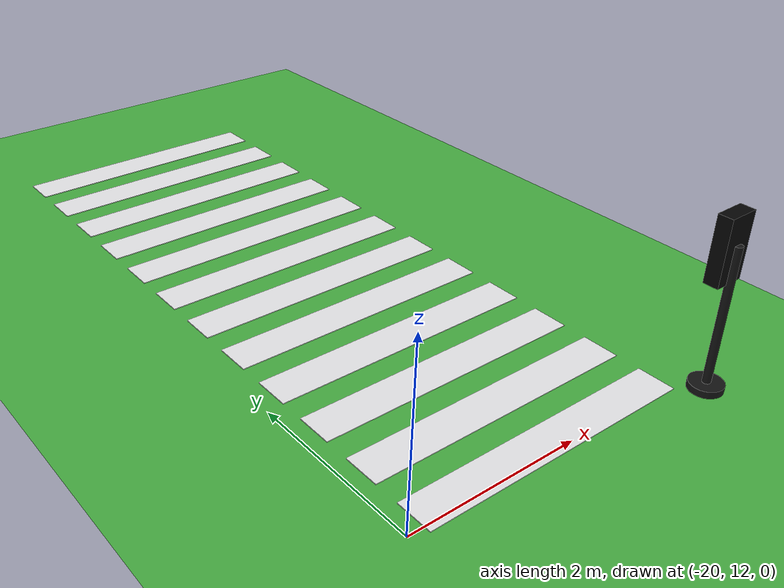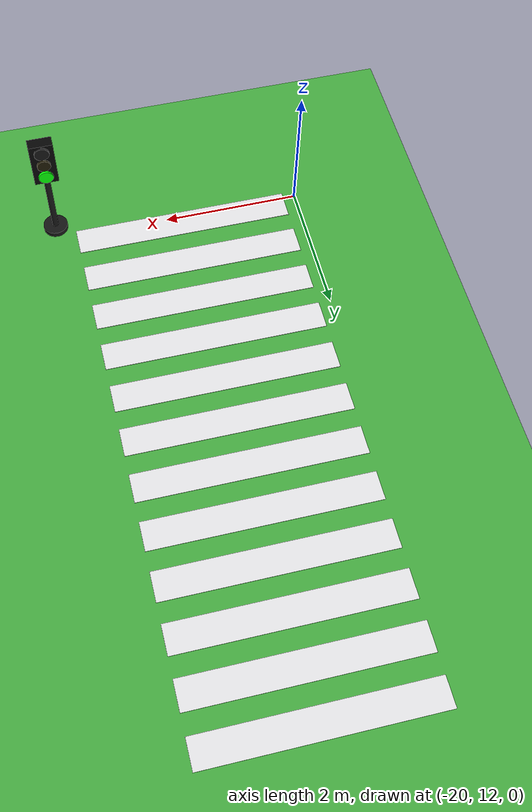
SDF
<sdf version="1.10">
 <world name="city_second">
  <model name="ground_plane">
   <static>true</static>
   <link name="link">
    <collision name="collision">
     <geometry><plane><normal>0 0 1</normal><size>300 300</size></plane></geometry>
    </collision>
    <visual name="visual">
     <geometry><plane><normal>0 0 1</normal><size>300 300</size></plane></geometry>
     <material>
      <ambient>0.280000001 0.689999998 0.25999999 1</ambient>
      <diffuse>0.280000001 0.689999998 0.25999999 1</diffuse>
      <specular>0.0299999993 0.0299999993 0.0299999993 1</specular>
     </material>
    </visual>
    <inertial>
     <mass>1</mass>
     <inertia><ixx>1</ixx><ixy>0</ixy><ixz>0</ixz><iyy>1</iyy><iyz>0</iyz><izz>1</izz></inertia>
    </inertial>
   </link>
  </model>
  <model name="crosswalk_v_2_1_east_5_1">
   <static>true</static>
   <pose>-18.222100000000001 15.9703 0.017000000000000001 0 0 0</pose>
   <link name="stripe_1">
    <collision name="collision">
     <geometry><box><size>3.2000000000000002 0.41999999999999998 0.01</size></box></geometry>
    </collision>
    <visual name="visual">
     <geometry><box><size>3.2000000000000002 0.41999999999999998 0.01</size></box></geometry>
     <material>
      <ambient>0.920000017 0.920000017 0.930000007 1</ambient>
      <diffuse>0.920000017 0.920000017 0.930000007 1</diffuse>
      <specular>0.0299999993 0.0299999993 0.0299999993 1</specular>
     </material>
    </visual>
    <pose>0 -3.8500000000000001 0 0 0 0</pose>
    <inertial>
     <mass>1</mass>
     <inertia><ixx>1</ixx><ixy>0</ixy><ixz>0</ixz><iyy>1</iyy><iyz>0</iyz><izz>1</izz></inertia>
    </inertial>
   </link>
   <link name="stripe_2">
    <collision name="collision">
     <geometry><box><size>3.2000000000000002 0.41999999999999998 0.01</size></box></geometry>
    </collision>
    <visual name="visual">
     <geometry><box><size>3.2000000000000002 0.41999999999999998 0.01</size></box></geometry>
     <material>
      <ambient>0.920000017 0.920000017 0.930000007 1</ambient>
      <diffuse>0.920000017 0.920000017 0.930000007 1</diffuse>
      <specular>0.0299999993 0.0299999993 0.0299999993 1</specular>
     </material>
    </visual>
    <pose>0 -3.1499999999999999 0 0 0 0</pose>
    <inertial>
     <mass>1</mass>
     <inertia><ixx>1</ixx><ixy>0</ixy><ixz>0</ixz><iyy>1</iyy><iyz>0</iyz><izz>1</izz></inertia>
    </inertial>
   </link>
   <link name="stripe_3">
    <collision name="collision">
     <geometry><box><size>3.2000000000000002 0.41999999999999998 0.01</size></box></geometry>
    </collision>
    <visual name="visual">
     <geometry><box><size>3.2000000000000002 0.41999999999999998 0.01</size></box></geometry>
     <material>
      <ambient>0.920000017 0.920000017 0.930000007 1</ambient>
      <diffuse>0.920000017 0.920000017 0.930000007 1</diffuse>
      <specular>0.0299999993 0.0299999993 0.0299999993 1</specular>
     </material>
    </visual>
    <pose>0 -2.4500000000000002 0 0 0 0</pose>
    <inertial>
     <mass>1</mass>
     <inertia><ixx>1</ixx><ixy>0</ixy><ixz>0</ixz><iyy>1</iyy><iyz>0</iyz><izz>1</izz></inertia>
    </inertial>
   </link>
   <link name="stripe_4">
    <collision name="collision">
     <geometry><box><size>3.2000000000000002 0.41999999999999998 0.01</size></box></geometry>
    </collision>
    <visual name="visual">
     <geometry><box><size>3.2000000000000002 0.41999999999999998 0.01</size></box></geometry>
     <material>
      <ambient>0.920000017 0.920000017 0.930000007 1</ambient>
      <diffuse>0.920000017 0.920000017 0.930000007 1</diffuse>
      <specular>0.0299999993 0.0299999993 0.0299999993 1</specular>
     </material>
    </visual>
    <pose>0 -1.75 0 0 0 0</pose>
    <inertial>
     <mass>1</mass>
     <inertia><ixx>1</ixx><ixy>0</ixy><ixz>0</ixz><iyy>1</iyy><iyz>0</iyz><izz>1</izz></inertia>
    </inertial>
   </link>
   <link name="stripe_5">
    <collision name="collision">
     <geometry><box><size>3.2000000000000002 0.41999999999999998 0.01</size></box></geometry>
    </collision>
    <visual name="visual">
     <geometry><box><size>3.2000000000000002 0.41999999999999998 0.01</size></box></geometry>
     <material>
      <ambient>0.920000017 0.920000017 0.930000007 1</ambient>
      <diffuse>0.920000017 0.920000017 0.930000007 1</diffuse>
      <specular>0.0299999993 0.0299999993 0.0299999993 1</specular>
     </material>
    </visual>
    <pose>0 -1.05 0 0 0 0</pose>
    <inertial>
     <mass>1</mass>
     <inertia><ixx>1</ixx><ixy>0</ixy><ixz>0</ixz><iyy>1</iyy><iyz>0</iyz><izz>1</izz></inertia>
    </inertial>
   </link>
   <link name="stripe_6">
    <collision name="collision">
     <geometry><box><size>3.2000000000000002 0.41999999999999998 0.01</size></box></geometry>
    </collision>
    <visual name="visual">
     <geometry><box><size>3.2000000000000002 0.41999999999999998 0.01</size></box></geometry>
     <material>
      <ambient>0.920000017 0.920000017 0.930000007 1</ambient>
      <diffuse>0.920000017 0.920000017 0.930000007 1</diffuse>
      <specular>0.0299999993 0.0299999993 0.0299999993 1</specular>
     </material>
    </visual>
    <pose>0 -0.34999999999999998 0 0 0 0</pose>
    <inertial>
     <mass>1</mass>
     <inertia><ixx>1</ixx><ixy>0</ixy><ixz>0</ixz><iyy>1</iyy><iyz>0</iyz><izz>1</izz></inertia>
    </inertial>
   </link>
   <link name="stripe_7">
    <collision name="collision">
     <geometry><box><size>3.2000000000000002 0.41999999999999998 0.01</size></box></geometry>
    </collision>
    <visual name="visual">
     <geometry><box><size>3.2000000000000002 0.41999999999999998 0.01</size></box></geometry>
     <material>
      <ambient>0.920000017 0.920000017 0.930000007 1</ambient>
      <diffuse>0.920000017 0.920000017 0.930000007 1</diffuse>
      <specular>0.0299999993 0.0299999993 0.0299999993 1</specular>
     </material>
    </visual>
    <pose>0 0.34999999999999998 0 0 0 0</pose>
    <inertial>
     <mass>1</mass>
     <inertia><ixx>1</ixx><ixy>0</ixy><ixz>0</ixz><iyy>1</iyy><iyz>0</iyz><izz>1</izz></inertia>
    </inertial>
   </link>
   <link name="stripe_8">
    <collision name="collision">
     <geometry><box><size>3.2000000000000002 0.41999999999999998 0.01</size></box></geometry>
    </collision>
    <visual name="visual">
     <geometry><box><size>3.2000000000000002 0.41999999999999998 0.01</size></box></geometry>
     <material>
      <ambient>0.920000017 0.920000017 0.930000007 1</ambient>
      <diffuse>0.920000017 0.920000017 0.930000007 1</diffuse>
      <specular>0.0299999993 0.0299999993 0.0299999993 1</specular>
     </material>
    </visual>
    <pose>0 1.05 0 0 0 0</pose>
    <inertial>
     <mass>1</mass>
     <inertia><ixx>1</ixx><ixy>0</ixy><ixz>0</ixz><iyy>1</iyy><iyz>0</iyz><izz>1</izz></inertia>
    </inertial>
   </link>
   <link name="stripe_9">
    <collision name="collision">
     <geometry><box><size>3.2000000000000002 0.41999999999999998 0.01</size></box></geometry>
    </collision>
    <visual name="visual">
     <geometry><box><size>3.2000000000000002 0.41999999999999998 0.01</size></box></geometry>
     <material>
      <ambient>0.920000017 0.920000017 0.930000007 1</ambient>
      <diffuse>0.920000017 0.920000017 0.930000007 1</diffuse>
      <specular>0.0299999993 0.0299999993 0.0299999993 1</specular>
     </material>
    </visual>
    <pose>0 1.75 0 0 0 0</pose>
    <inertial>
     <mass>1</mass>
     <inertia><ixx>1</ixx><ixy>0</ixy><ixz>0</ixz><iyy>1</iyy><iyz>0</iyz><izz>1</izz></inertia>
    </inertial>
   </link>
   <link name="stripe_10">
    <collision name="collision">
     <geometry><box><size>3.2000000000000002 0.41999999999999998 0.01</size></box></geometry>
    </collision>
    <visual name="visual">
     <geometry><box><size>3.2000000000000002 0.41999999999999998 0.01</size></box></geometry>
     <material>
      <ambient>0.920000017 0.920000017 0.930000007 1</ambient>
      <diffuse>0.920000017 0.920000017 0.930000007 1</diffuse>
      <specular>0.0299999993 0.0299999993 0.0299999993 1</specular>
     </material>
    </visual>
    <pose>0 2.4500000000000002 0 0 0 0</pose>
    <inertial>
     <mass>1</mass>
     <inertia><ixx>1</ixx><ixy>0</ixy><ixz>0</ixz><iyy>1</iyy><iyz>0</iyz><izz>1</izz></inertia>
    </inertial>
   </link>
   <link name="stripe_11">
    <collision name="collision">
     <geometry><box><size>3.2000000000000002 0.41999999999999998 0.01</size></box></geometry>
    </collision>
    <visual name="visual">
     <geometry><box><size>3.2000000000000002 0.41999999999999998 0.01</size></box></geometry>
     <material>
      <ambient>0.920000017 0.920000017 0.930000007 1</ambient>
      <diffuse>0.920000017 0.920000017 0.930000007 1</diffuse>
      <specular>0.0299999993 0.0299999993 0.0299999993 1</specular>
     </material>
    </visual>
    <pose>0 3.1499999999999999 0 0 0 0</pose>
    <inertial>
     <mass>1</mass>
     <inertia><ixx>1</ixx><ixy>0</ixy><ixz>0</ixz><iyy>1</iyy><iyz>0</iyz><izz>1</izz></inertia>
    </inertial>
   </link>
   <link name="stripe_12">
    <collision name="collision">
     <geometry><box><size>3.2000000000000002 0.41999999999999998 0.01</size></box></geometry>
    </collision>
    <visual name="visual">
     <geometry><box><size>3.2000000000000002 0.41999999999999998 0.01</size></box></geometry>
     <material>
      <ambient>0.920000017 0.920000017 0.930000007 1</ambient>
      <diffuse>0.920000017 0.920000017 0.930000007 1</diffuse>
      <specular>0.0299999993 0.0299999993 0.0299999993 1</specular>
     </material>
    </visual>
    <pose>0 3.8500000000000001 0 0 0 0</pose>
    <inertial>
     <mass>1</mass>
     <inertia><ixx>1</ixx><ixy>0</ixy><ixz>0</ixz><iyy>1</iyy><iyz>0</iyz><izz>1</izz></inertia>
    </inertial>
   </link>
  </model>
  <model name="simple_traffic_light_green_north_1_2_2">
   <static>true</static>
   <pose>-16.344982830740257 11.749732074179992 0 0 0 0</pose>
   <link name="base">
    <pose>0 0 0.040000000000000001 0 0 0</pose>
    <collision name="collision">
     <geometry>
      <cylinder><radius>0.17999999999999999</radius><length>0.080000000000000002</length></cylinder>
     </geometry>
    </collision>
    <visual name="visual">
     <geometry>
      <cylinder><radius>0.17999999999999999</radius><length>0.080000000000000002</length></cylinder>
     </geometry>
     <material>
      <ambient>0.0799999982 0.0799999982 0.0799999982 1</ambient>
      <diffuse>0.0799999982 0.0799999982 0.0799999982 1</diffuse>
      <specular>0.150000006 0.150000006 0.150000006 1</specular>
      <emissive>0 0 0 1</emissive>
     </material>
    </visual>
   </link>
   <link name="pole">
    <pose>0 0 0.80000000000000004 0 0 0</pose>
    <collision name="collision">
     <geometry>
      <cylinder><radius>0.044999999999999998</radius><length>1.6000000000000001</length></cylinder>
     </geometry>
    </collision>
    <visual name="visual">
     <geometry>
      <cylinder><radius>0.044999999999999998</radius><length>1.6000000000000001</length></cylinder>
     </geometry>
     <material>
      <ambient>0.0799999982 0.0799999982 0.0799999982 1</ambient>
      <diffuse>0.0799999982 0.0799999982 0.0799999982 1</diffuse>
      <specular>0.150000006 0.150000006 0.150000006 1</specular>
      <emissive>0 0 0 1</emissive>
     </material>
    </visual>
   </link>
   <link name="signal_box">
    <pose>0 0.089999999999999997 1.55 0 0 0</pose>
    <collision name="collision">
     <geometry><box><size>0.34000000000000002 0.16 0.71999999999999997</size></box></geometry>
    </collision>
    <visual name="visual">
     <geometry><box><size>0.34000000000000002 0.16 0.71999999999999997</size></box></geometry>
     <material>
      <ambient>0.0199999996 0.0199999996 0.0199999996 1</ambient>
      <diffuse>0.0199999996 0.0199999996 0.0199999996 1</diffuse>
      <specular>0.150000006 0.150000006 0.150000006 1</specular>
      <emissive>0 0 0 1</emissive>
     </material>
    </visual>
   </link>
   <link name="red_lens">
    <pose>0 0.18099999999999999 1.78 1.5707963268 0 0</pose>
    <collision name="collision">
     <geometry><cylinder><radius>0.105</radius><length>0.035000000000000003</length></cylinder></geometry>
    </collision>
    <visual name="visual">
     <geometry><cylinder><radius>0.105</radius><length>0.035000000000000003</length></cylinder></geometry>
     <material>
      <ambient>0.0799999982 0.0799999982 0.0799999982 1</ambient>
      <diffuse>0.0799999982 0.0799999982 0.0799999982 1</diffuse>
      <specular>0.150000006 0.150000006 0.150000006 1</specular>
      <emissive>0 0 0 1</emissive>
     </material>
    </visual>
   </link>
   <link name="yellow_lens">
    <pose>0 0.182 1.55 1.5707963268 0 0</pose>
    <collision name="collision">
     <geometry>
      <cylinder><radius>0.095000000000000001</radius><length>0.035000000000000003</length></cylinder>
     </geometry>
    </collision>
    <visual name="visual">
     <geometry>
      <cylinder><radius>0.095000000000000001</radius><length>0.035000000000000003</length></cylinder>
     </geometry>
     <material>
      <ambient>0.119999997 0.100000001 0.0199999996 1</ambient>
      <diffuse>0.119999997 0.100000001 0.0199999996 1</diffuse>
      <specular>0.150000006 0.150000006 0.150000006 1</specular>
      <emissive>0 0 0 1</emissive>
     </material>
    </visual>
   </link>
   <link name="green_lens">
    <pose>0 0.183 1.3200000000000001 1.5707963268 0 0</pose>
    <collision name="collision">
     <geometry><cylinder><radius>0.105</radius><length>0.035000000000000003</length></cylinder></geometry>
    </collision>
    <visual name="visual">
     <geometry><cylinder><radius>0.105</radius><length>0.035000000000000003</length></cylinder></geometry>
     <material>
      <ambient>0.0199999996 1 0.0199999996 1</ambient>
      <diffuse>0.0199999996 1 0.0199999996 1</diffuse>
      <specular>0.150000006 0.150000006 0.150000006 1</specular>
      <emissive>0.0199999996 1 0.0199999996 1</emissive>
     </material>
    </visual>
   </link>
   <light name="green_glow" type="point">
    <pose>0 0.28 1.32 0 0 0</pose>
    <diffuse>0.02 1 0.02 1</diffuse>
    <specular>0.02 1 0.02 1</specular>
    <attenuation>
     <range>3.0</range>
     <constant>0.8</constant>
     <linear>0.15</linear>
     <quadratic>0.02</quadratic>
    </attenuation>
    <cast_shadows>false</cast_shadows>
   </light>
  </model>
 </world>
</sdf>
